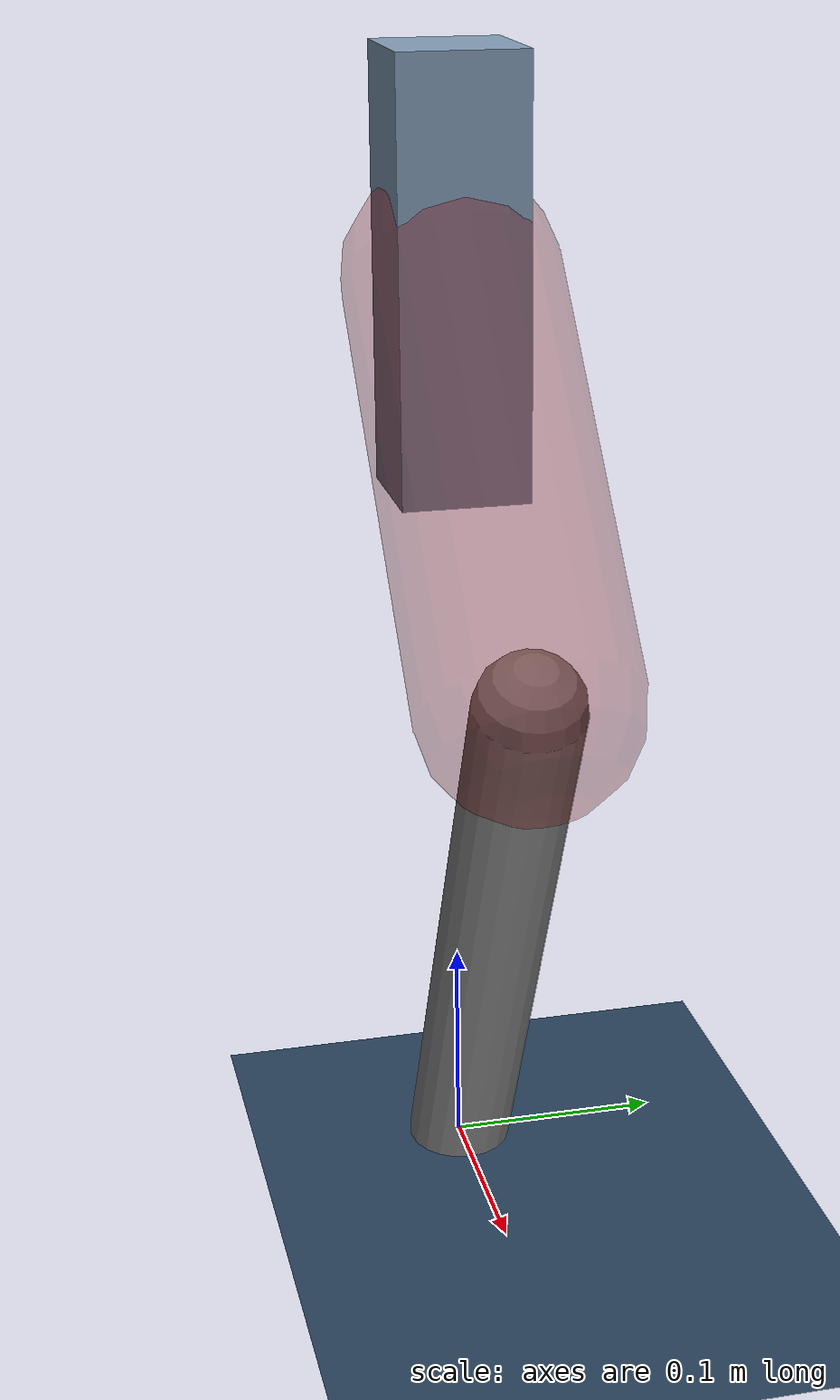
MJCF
<mujoco model="Hopper2D">
	<compiler inertiafromgeom="true" angle="radian" />
	<option timestep="0.001" integrator="implicit" cone="elliptic" solver="Newton" tolerance="1e-10" />

	<default>
		<geom contype="1" conaffinity="1" condim="3" friction="2 0.005 0.0001" solref="0.005 1" />
		<joint limited="true" damping="0.1" />
	</default>

	<asset>
		<texture name="skybox" type="skybox" builtin="gradient" rgb1=".4 .6 .8" rgb2="0 0 0" width="800" height="800" />
		<texture name="grid" type="2d" builtin="checker" rgb1=".1 .2 .3" rgb2=".2 .3 .4" width="300" height="300" mark="edge" markrgb=".2 .3 .4" />
		<material name="ground" texture="grid" texrepeat="1 1" texuniform="true" reflectance="0.1" />
		<material name="leg" rgba="0.5 0.6 0.7 1" />
	</asset>

	<worldbody>

		<geom name="floor" type="plane" size="5 5 0.25" material="ground" />

		<light directional="false" diffuse="0.8 0.8 0.8" specular="0.3 0.3 0.3" pos="0 0 2" dir="0 0 -1" />
		<light mode="targetbodycom" target="base" directional="false" diffuse="0.8 0.8 0.8" specular="0.3 0.3 0.3" pos="0 0 2" dir="0 0 -1" />

		<camera name="fixed" pos="0 -2 1" xyaxes="1 0 0 0 0 1" />
		<camera name="tracking" mode="trackcom" pos="0 -3 1" />

		<body name="root" pos="0 0 0.43799194373916506">
			<joint name="slide_x" type="slide" axis="1 0 0" range="-100 100" />
			<joint name="slide_z" type="slide" axis="0 0 1" range="0 10" />

			<body name="base" pos="0 0 0">
				<geom name="torso" type="box" size="0.03 0.03 0.1" mass="2.6710000000000003" material="leg" />

				<body name="link1" pos="0 0 0" euler="0 0.8193455410968039 0">
					<joint type="hinge" axis="0 -1 0" pos="0 0 0" name="hinge1" limited="true" range="-3.14 3.14" stiffness="0" damping="0.1" />
					<geom name="thigh" type="capsule" fromto="0 0 0 0.21096739750356974 0 0" size="0.05" rgba="0.5 0 0 0.3" mass="0.7569184937589244" />

					<body name="link2" pos="0.21096739750356974 0 0" euler="0 1.2210227893097225 0">
						<joint type="hinge" axis="0 -1 0" pos="0 0 0" name="hinge2" limited="true" range="-3.14 3.14" stiffness="0" damping="0.1" />
						<geom name="shank" type="capsule" fromto="0 0 0 0.3182892128224381 0 0" size="0.025" mass="0.4982602915401943" />

					</body>
				</body>
			</body>
		</body>
	</worldbody>

	<actuator>
		<motor name="torque1" joint="hinge1" ctrlrange="-148.37367601554928 148.37367601554928" ctrllimited="true" gear="1" />
		<motor name="torque2" joint="hinge2" ctrlrange="-14.133475685201942 14.133475685201942" ctrllimited="true" gear="1" />
	</actuator>
</mujoco>
